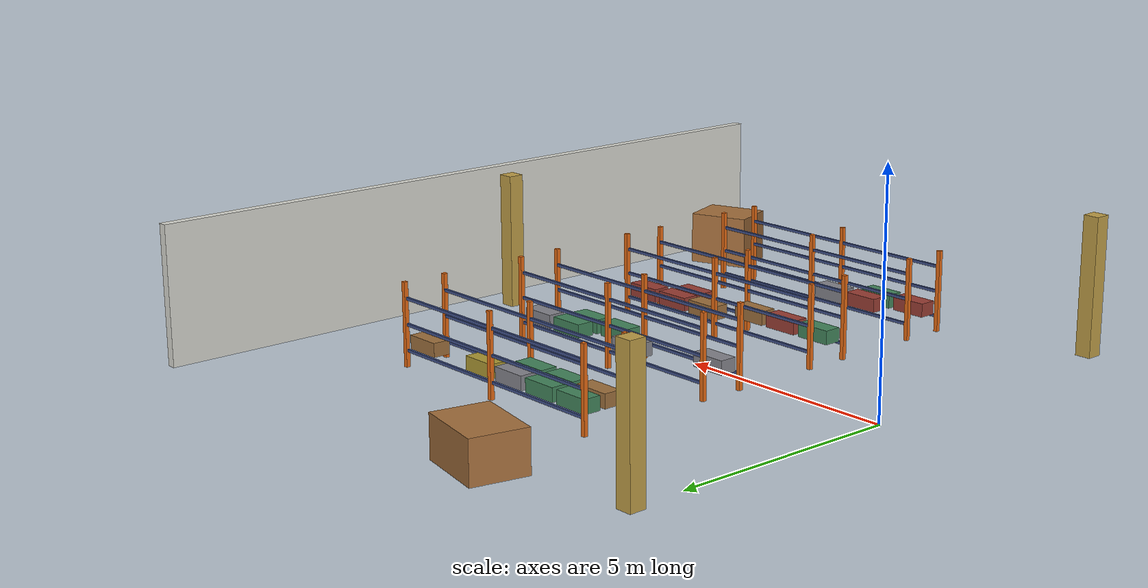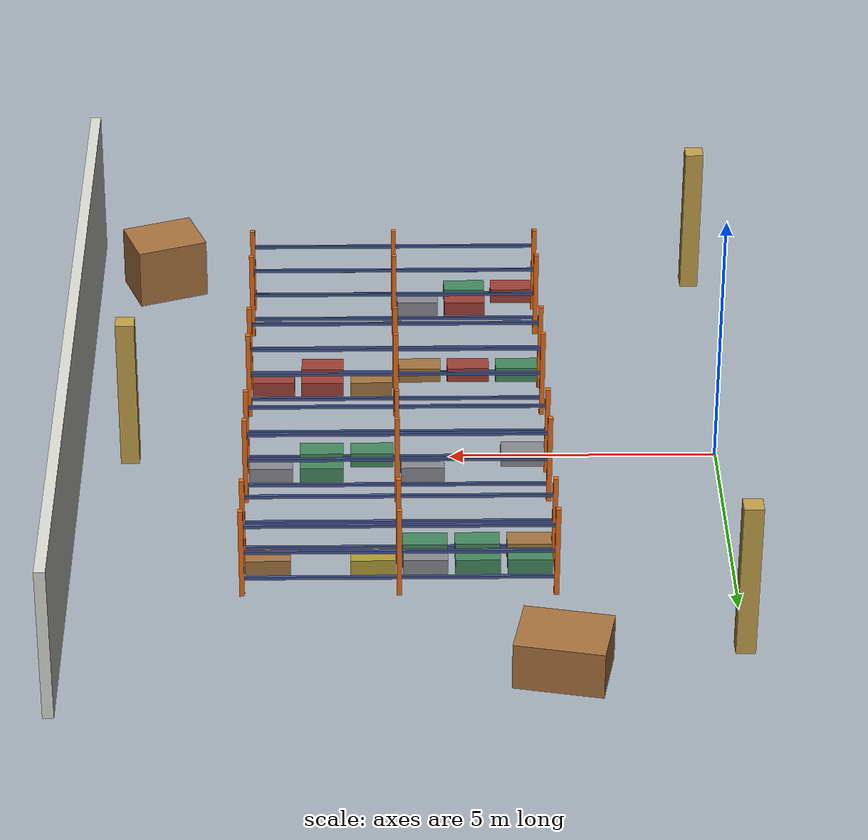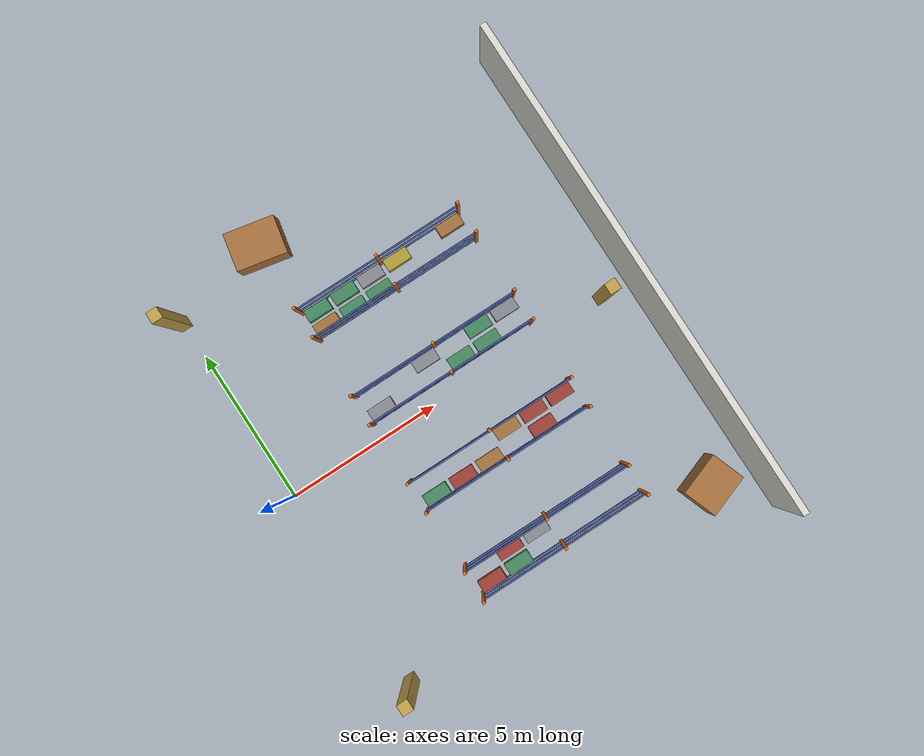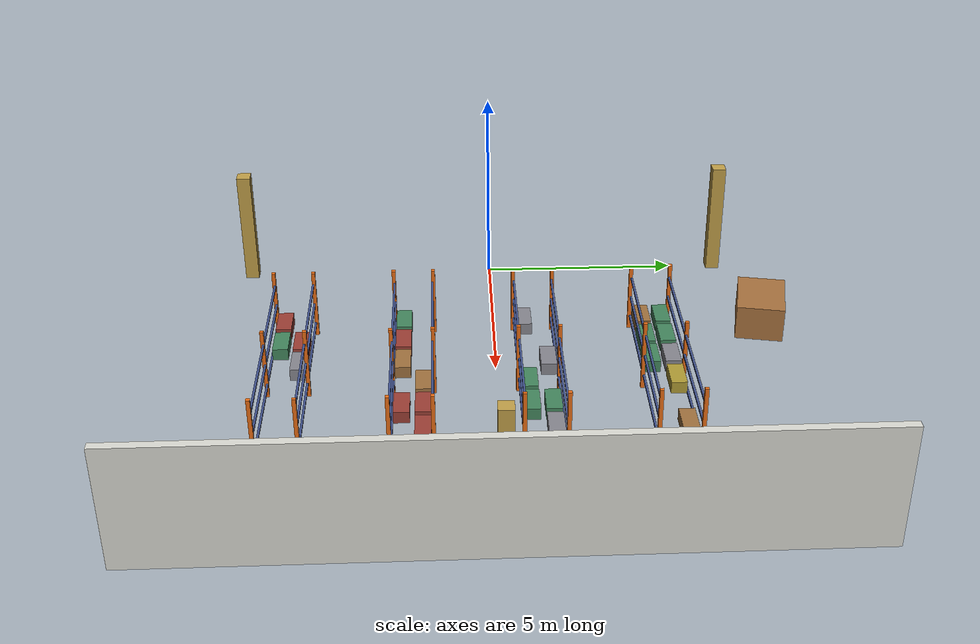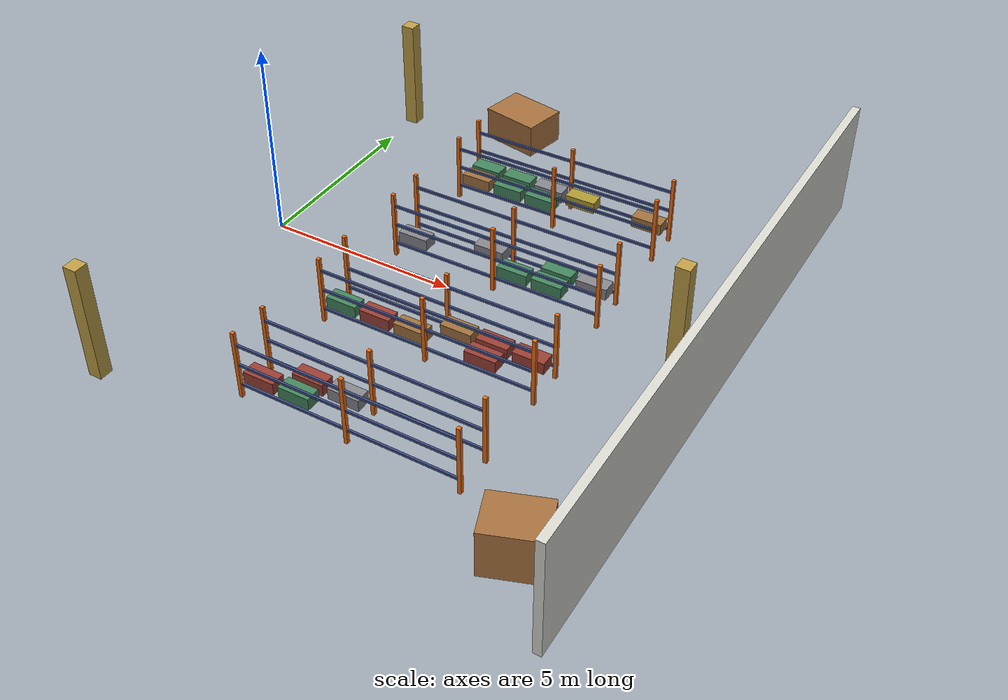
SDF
<sdf version="1.10">
 <world name="warehouse">
  <model name="warehouse_building">
   <static>true</static>
   <link name="wall_east">
    <pose>12 0 1.5 0 0 0</pose>
    <collision name="collision"><geometry><box><size>0.2 16.2 3</size></box></geometry></collision>
    <visual name="visual">
     <geometry><box><size>0.2 16.2 3</size></box></geometry>
     <material><ambient>0.7 0.7 0.68 1</ambient><diffuse>0.85 0.85 0.82 1</diffuse></material>
    </visual>
   </link>
   <link name="rack_r0_b1">
    <pose>6 -5 1.25 0 0 0</pose>
    <collision name="upright_n0_collision">
     <pose>-2.796 0.495 -0.350 0 0 0</pose>
     <geometry><box><size>0.09 0.09 1.8</size></box></geometry>
    </collision>
    <visual name="upright_n0_visual">
     <pose>-2.796 0.495 -0.350 0 0 0</pose>
     <geometry><box><size>0.09 0.09 1.8</size></box></geometry>
     <material><ambient>0.55 0.25 0.05 1</ambient><diffuse>0.90 0.42 0.08 1</diffuse></material>
    </visual>
    <collision name="upright_n1_collision">
     <pose>0 0.495 -0.350 0 0 0</pose>
     <geometry><box><size>0.09 0.09 1.8</size></box></geometry>
    </collision>
    <visual name="upright_n1_visual">
     <pose>0 0.495 -0.350 0 0 0</pose>
     <geometry><box><size>0.09 0.09 1.8</size></box></geometry>
     <material><ambient>0.55 0.25 0.05 1</ambient><diffuse>0.90 0.42 0.08 1</diffuse></material>
    </visual>
    <collision name="upright_n2_collision">
     <pose>2.796 0.495 -0.350 0 0 0</pose>
     <geometry><box><size>0.09 0.09 1.8</size></box></geometry>
    </collision>
    <visual name="upright_n2_visual">
     <pose>2.796 0.495 -0.350 0 0 0</pose>
     <geometry><box><size>0.09 0.09 1.8</size></box></geometry>
     <material><ambient>0.55 0.25 0.05 1</ambient><diffuse>0.90 0.42 0.08 1</diffuse></material>
    </visual>
    <collision name="beam_n0_l0_collision">
     <pose>-1.398 0.475 -0.900 0 0 0</pose>
     <geometry><box><size>2.706 0.05 0.06</size></box></geometry>
    </collision>
    <visual name="beam_n0_l0_visual">
     <pose>-1.398 0.475 -0.900 0 0 0</pose>
     <geometry><box><size>2.706 0.05 0.06</size></box></geometry>
     <material><ambient>0.15 0.18 0.30 1</ambient><diffuse>0.25 0.32 0.55 1</diffuse></material>
    </visual>
    <collision name="beam_n0_l1_collision">
     <pose>-1.398 0.475 -0.350 0 0 0</pose>
     <geometry><box><size>2.706 0.05 0.06</size></box></geometry>
    </collision>
    <visual name="beam_n0_l1_visual">
     <pose>-1.398 0.475 -0.350 0 0 0</pose>
     <geometry><box><size>2.706 0.05 0.06</size></box></geometry>
     <material><ambient>0.15 0.18 0.30 1</ambient><diffuse>0.25 0.32 0.55 1</diffuse></material>
    </visual>
    <collision name="beam_n0_l2_collision">
     <pose>-1.398 0.475 0.200 0 0 0</pose>
     <geometry><box><size>2.706 0.05 0.06</size></box></geometry>
    </collision>
    <visual name="beam_n0_l2_visual">
     <pose>-1.398 0.475 0.200 0 0 0</pose>
     <geometry><box><size>2.706 0.05 0.06</size></box></geometry>
     <material><ambient>0.15 0.18 0.30 1</ambient><diffuse>0.25 0.32 0.55 1</diffuse></material>
    </visual>
    <collision name="beam_n1_l0_collision">
     <pose>1.398 0.475 -0.900 0 0 0</pose>
     <geometry><box><size>2.706 0.05 0.06</size></box></geometry>
    </collision>
    <visual name="beam_n1_l0_visual">
     <pose>1.398 0.475 -0.900 0 0 0</pose>
     <geometry><box><size>2.706 0.05 0.06</size></box></geometry>
     <material><ambient>0.15 0.18 0.30 1</ambient><diffuse>0.25 0.32 0.55 1</diffuse></material>
    </visual>
    <collision name="beam_n1_l1_collision">
     <pose>1.398 0.475 -0.350 0 0 0</pose>
     <geometry><box><size>2.706 0.05 0.06</size></box></geometry>
    </collision>
    <visual name="beam_n1_l1_visual">
     <pose>1.398 0.475 -0.350 0 0 0</pose>
     <geometry><box><size>2.706 0.05 0.06</size></box></geometry>
     <material><ambient>0.15 0.18 0.30 1</ambient><diffuse>0.25 0.32 0.55 1</diffuse></material>
    </visual>
    <collision name="beam_n1_l2_collision">
     <pose>1.398 0.475 0.200 0 0 0</pose>
     <geometry><box><size>2.706 0.05 0.06</size></box></geometry>
    </collision>
    <visual name="beam_n1_l2_visual">
     <pose>1.398 0.475 0.200 0 0 0</pose>
     <geometry><box><size>2.706 0.05 0.06</size></box></geometry>
     <material><ambient>0.15 0.18 0.30 1</ambient><diffuse>0.25 0.32 0.55 1</diffuse></material>
    </visual>
    <collision name="item_n0_l0_s2_collision">
     <pose>-0.466 0.250 -0.720 0 0 0</pose>
     <geometry><box><size>0.8 0.38 0.3</size></box></geometry>
    </collision>
    <visual name="item_n0_l0_s2_visual">
     <pose>-0.466 0.250 -0.720 0 0 0</pose>
     <geometry><box><size>0.8 0.38 0.3</size></box></geometry>
     <material><ambient>0.30 0.30 0.32 1</ambient><diffuse>0.52 0.52 0.55 1</diffuse></material>
    </visual>
    <collision name="item_n0_l0_s1_collision">
     <pose>-1.398 0.250 -0.720 0 0 0</pose>
     <geometry><box><size>0.8 0.38 0.3</size></box></geometry>
    </collision>
    <visual name="item_n0_l0_s1_visual">
     <pose>-1.398 0.250 -0.720 0 0 0</pose>
     <geometry><box><size>0.8 0.38 0.3</size></box></geometry>
     <material><ambient>0.30 0.12 0.12 1</ambient><diffuse>0.60 0.24 0.20 1</diffuse></material>
    </visual>
    <collision name="upright_s0_collision">
     <pose>-2.796 -0.495 -0.350 0 0 0</pose>
     <geometry><box><size>0.09 0.09 1.8</size></box></geometry>
    </collision>
    <visual name="upright_s0_visual">
     <pose>-2.796 -0.495 -0.350 0 0 0</pose>
     <geometry><box><size>0.09 0.09 1.8</size></box></geometry>
     <material><ambient>0.55 0.25 0.05 1</ambient><diffuse>0.90 0.42 0.08 1</diffuse></material>
    </visual>
    <collision name="upright_s1_collision">
     <pose>0 -0.495 -0.350 0 0 0</pose>
     <geometry><box><size>0.09 0.09 1.8</size></box></geometry>
    </collision>
    <visual name="upright_s1_visual">
     <pose>0 -0.495 -0.350 0 0 0</pose>
     <geometry><box><size>0.09 0.09 1.8</size></box></geometry>
     <material><ambient>0.55 0.25 0.05 1</ambient><diffuse>0.90 0.42 0.08 1</diffuse></material>
    </visual>
    <collision name="upright_s2_collision">
     <pose>2.796 -0.495 -0.350 0 0 0</pose>
     <geometry><box><size>0.09 0.09 1.8</size></box></geometry>
    </collision>
    <visual name="upright_s2_visual">
     <pose>2.796 -0.495 -0.350 0 0 0</pose>
     <geometry><box><size>0.09 0.09 1.8</size></box></geometry>
     <material><ambient>0.55 0.25 0.05 1</ambient><diffuse>0.90 0.42 0.08 1</diffuse></material>
    </visual>
    <collision name="beam_s0_l0_collision">
     <pose>-1.398 -0.475 -0.900 0 0 0</pose>
     <geometry><box><size>2.706 0.05 0.06</size></box></geometry>
    </collision>
    <visual name="beam_s0_l0_visual">
     <pose>-1.398 -0.475 -0.900 0 0 0</pose>
     <geometry><box><size>2.706 0.05 0.06</size></box></geometry>
     <material><ambient>0.15 0.18 0.30 1</ambient><diffuse>0.25 0.32 0.55 1</diffuse></material>
    </visual>
    <collision name="beam_s0_l1_collision">
     <pose>-1.398 -0.475 -0.350 0 0 0</pose>
     <geometry><box><size>2.706 0.05 0.06</size></box></geometry>
    </collision>
    <visual name="beam_s0_l1_visual">
     <pose>-1.398 -0.475 -0.350 0 0 0</pose>
     <geometry><box><size>2.706 0.05 0.06</size></box></geometry>
     <material><ambient>0.15 0.18 0.30 1</ambient><diffuse>0.25 0.32 0.55 1</diffuse></material>
    </visual>
    <collision name="beam_s0_l2_collision">
     <pose>-1.398 -0.475 0.200 0 0 0</pose>
     <geometry><box><size>2.706 0.05 0.06</size></box></geometry>
    </collision>
    <visual name="beam_s0_l2_visual">
     <pose>-1.398 -0.475 0.200 0 0 0</pose>
     <geometry><box><size>2.706 0.05 0.06</size></box></geometry>
     <material><ambient>0.15 0.18 0.30 1</ambient><diffuse>0.25 0.32 0.55 1</diffuse></material>
    </visual>
    <collision name="beam_s1_l0_collision">
     <pose>1.398 -0.475 -0.900 0 0 0</pose>
     <geometry><box><size>2.706 0.05 0.06</size></box></geometry>
    </collision>
    <visual name="beam_s1_l0_visual">
     <pose>1.398 -0.475 -0.900 0 0 0</pose>
     <geometry><box><size>2.706 0.05 0.06</size></box></geometry>
     <material><ambient>0.15 0.18 0.30 1</ambient><diffuse>0.25 0.32 0.55 1</diffuse></material>
    </visual>
    <collision name="beam_s1_l1_collision">
     <pose>1.398 -0.475 -0.350 0 0 0</pose>
     <geometry><box><size>2.706 0.05 0.06</size></box></geometry>
    </collision>
    <visual name="beam_s1_l1_visual">
     <pose>1.398 -0.475 -0.350 0 0 0</pose>
     <geometry><box><size>2.706 0.05 0.06</size></box></geometry>
     <material><ambient>0.15 0.18 0.30 1</ambient><diffuse>0.25 0.32 0.55 1</diffuse></material>
    </visual>
    <collision name="beam_s1_l2_collision">
     <pose>1.398 -0.475 0.200 0 0 0</pose>
     <geometry><box><size>2.706 0.05 0.06</size></box></geometry>
    </collision>
    <visual name="beam_s1_l2_visual">
     <pose>1.398 -0.475 0.200 0 0 0</pose>
     <geometry><box><size>2.706 0.05 0.06</size></box></geometry>
     <material><ambient>0.15 0.18 0.30 1</ambient><diffuse>0.25 0.32 0.55 1</diffuse></material>
    </visual>
    <collision name="item_s0_l0_s0_collision">
     <pose>-2.33 -0.250 -0.720 0 0 0</pose>
     <geometry><box><size>0.8 0.38 0.3</size></box></geometry>
    </collision>
    <visual name="item_s0_l0_s0_visual">
     <pose>-2.33 -0.250 -0.720 0 0 0</pose>
     <geometry><box><size>0.8 0.38 0.3</size></box></geometry>
     <material><ambient>0.30 0.12 0.12 1</ambient><diffuse>0.60 0.24 0.20 1</diffuse></material>
    </visual>
    <collision name="item_s0_l0_s1_collision">
     <pose>-1.398 -0.250 -0.720 0 0 0</pose>
     <geometry><box><size>0.8 0.38 0.3</size></box></geometry>
    </collision>
    <visual name="item_s0_l0_s1_visual">
     <pose>-1.398 -0.250 -0.720 0 0 0</pose>
     <geometry><box><size>0.8 0.38 0.3</size></box></geometry>
     <material><ambient>0.14 0.28 0.20 1</ambient><diffuse>0.26 0.52 0.36 1</diffuse></material>
    </visual>
   </link>
   <link name="rack_r1_b1">
    <pose>6 -2 1.25 0 0 0</pose>
    <collision name="upright_n0_collision">
     <pose>-2.796 0.495 -0.350 0 0 0</pose>
     <geometry><box><size>0.09 0.09 1.8</size></box></geometry>
    </collision>
    <visual name="upright_n0_visual">
     <pose>-2.796 0.495 -0.350 0 0 0</pose>
     <geometry><box><size>0.09 0.09 1.8</size></box></geometry>
     <material><ambient>0.55 0.25 0.05 1</ambient><diffuse>0.90 0.42 0.08 1</diffuse></material>
    </visual>
    <collision name="upright_n1_collision">
     <pose>0 0.495 -0.350 0 0 0</pose>
     <geometry><box><size>0.09 0.09 1.8</size></box></geometry>
    </collision>
    <visual name="upright_n1_visual">
     <pose>0 0.495 -0.350 0 0 0</pose>
     <geometry><box><size>0.09 0.09 1.8</size></box></geometry>
     <material><ambient>0.55 0.25 0.05 1</ambient><diffuse>0.90 0.42 0.08 1</diffuse></material>
    </visual>
    <collision name="upright_n2_collision">
     <pose>2.796 0.495 -0.350 0 0 0</pose>
     <geometry><box><size>0.09 0.09 1.8</size></box></geometry>
    </collision>
    <visual name="upright_n2_visual">
     <pose>2.796 0.495 -0.350 0 0 0</pose>
     <geometry><box><size>0.09 0.09 1.8</size></box></geometry>
     <material><ambient>0.55 0.25 0.05 1</ambient><diffuse>0.90 0.42 0.08 1</diffuse></material>
    </visual>
    <collision name="beam_n0_l0_collision">
     <pose>-1.398 0.475 -0.900 0 0 0</pose>
     <geometry><box><size>2.706 0.05 0.06</size></box></geometry>
    </collision>
    <visual name="beam_n0_l0_visual">
     <pose>-1.398 0.475 -0.900 0 0 0</pose>
     <geometry><box><size>2.706 0.05 0.06</size></box></geometry>
     <material><ambient>0.15 0.18 0.30 1</ambient><diffuse>0.25 0.32 0.55 1</diffuse></material>
    </visual>
    <collision name="beam_n0_l1_collision">
     <pose>-1.398 0.475 -0.350 0 0 0</pose>
     <geometry><box><size>2.706 0.05 0.06</size></box></geometry>
    </collision>
    <visual name="beam_n0_l1_visual">
     <pose>-1.398 0.475 -0.350 0 0 0</pose>
     <geometry><box><size>2.706 0.05 0.06</size></box></geometry>
     <material><ambient>0.15 0.18 0.30 1</ambient><diffuse>0.25 0.32 0.55 1</diffuse></material>
    </visual>
    <collision name="beam_n0_l2_collision">
     <pose>-1.398 0.475 0.200 0 0 0</pose>
     <geometry><box><size>2.706 0.05 0.06</size></box></geometry>
    </collision>
    <visual name="beam_n0_l2_visual">
     <pose>-1.398 0.475 0.200 0 0 0</pose>
     <geometry><box><size>2.706 0.05 0.06</size></box></geometry>
     <material><ambient>0.15 0.18 0.30 1</ambient><diffuse>0.25 0.32 0.55 1</diffuse></material>
    </visual>
    <collision name="beam_n1_l0_collision">
     <pose>1.398 0.475 -0.900 0 0 0</pose>
     <geometry><box><size>2.706 0.05 0.06</size></box></geometry>
    </collision>
    <visual name="beam_n1_l0_visual">
     <pose>1.398 0.475 -0.900 0 0 0</pose>
     <geometry><box><size>2.706 0.05 0.06</size></box></geometry>
     <material><ambient>0.15 0.18 0.30 1</ambient><diffuse>0.25 0.32 0.55 1</diffuse></material>
    </visual>
    <collision name="beam_n1_l1_collision">
     <pose>1.398 0.475 -0.350 0 0 0</pose>
     <geometry><box><size>2.706 0.05 0.06</size></box></geometry>
    </collision>
    <visual name="beam_n1_l1_visual">
     <pose>1.398 0.475 -0.350 0 0 0</pose>
     <geometry><box><size>2.706 0.05 0.06</size></box></geometry>
     <material><ambient>0.15 0.18 0.30 1</ambient><diffuse>0.25 0.32 0.55 1</diffuse></material>
    </visual>
    <collision name="beam_n1_l2_collision">
     <pose>1.398 0.475 0.200 0 0 0</pose>
     <geometry><box><size>2.706 0.05 0.06</size></box></geometry>
    </collision>
    <visual name="beam_n1_l2_visual">
     <pose>1.398 0.475 0.200 0 0 0</pose>
     <geometry><box><size>2.706 0.05 0.06</size></box></geometry>
     <material><ambient>0.15 0.18 0.30 1</ambient><diffuse>0.25 0.32 0.55 1</diffuse></material>
    </visual>
    <collision name="item_n1_l0_s0_collision">
     <pose>0.466 0.250 -0.720 0 0 0</pose>
     <geometry><box><size>0.8 0.38 0.3</size></box></geometry>
    </collision>
    <visual name="item_n1_l0_s0_visual">
     <pose>0.466 0.250 -0.720 0 0 0</pose>
     <geometry><box><size>0.8 0.38 0.3</size></box></geometry>
     <material><ambient>0.38 0.26 0.13 1</ambient><diffuse>0.62 0.44 0.24 1</diffuse></material>
    </visual>
    <collision name="item_n1_l0_s2_collision">
     <pose>2.33 0.250 -0.720 0 0 0</pose>
     <geometry><box><size>0.8 0.38 0.3</size></box></geometry>
    </collision>
    <visual name="item_n1_l0_s2_visual">
     <pose>2.33 0.250 -0.720 0 0 0</pose>
     <geometry><box><size>0.8 0.38 0.3</size></box></geometry>
     <material><ambient>0.30 0.12 0.12 1</ambient><diffuse>0.60 0.24 0.20 1</diffuse></material>
    </visual>
    <collision name="item_n1_l0_s1_collision">
     <pose>1.398 0.250 -0.720 0 0 0</pose>
     <geometry><box><size>0.8 0.38 0.3</size></box></geometry>
    </collision>
    <visual name="item_n1_l0_s1_visual">
     <pose>1.398 0.250 -0.720 0 0 0</pose>
     <geometry><box><size>0.8 0.38 0.3</size></box></geometry>
     <material><ambient>0.30 0.12 0.12 1</ambient><diffuse>0.60 0.24 0.20 1</diffuse></material>
    </visual>
    <collision name="upright_s0_collision">
     <pose>-2.796 -0.495 -0.350 0 0 0</pose>
     <geometry><box><size>0.09 0.09 1.8</size></box></geometry>
    </collision>
    <visual name="upright_s0_visual">
     <pose>-2.796 -0.495 -0.350 0 0 0</pose>
     <geometry><box><size>0.09 0.09 1.8</size></box></geometry>
     <material><ambient>0.55 0.25 0.05 1</ambient><diffuse>0.90 0.42 0.08 1</diffuse></material>
    </visual>
    <collision name="upright_s1_collision">
     <pose>0 -0.495 -0.350 0 0 0</pose>
     <geometry><box><size>0.09 0.09 1.8</size></box></geometry>
    </collision>
    <visual name="upright_s1_visual">
     <pose>0 -0.495 -0.350 0 0 0</pose>
     <geometry><box><size>0.09 0.09 1.8</size></box></geometry>
     <material><ambient>0.55 0.25 0.05 1</ambient><diffuse>0.90 0.42 0.08 1</diffuse></material>
    </visual>
    <collision name="upright_s2_collision">
     <pose>2.796 -0.495 -0.350 0 0 0</pose>
     <geometry><box><size>0.09 0.09 1.8</size></box></geometry>
    </collision>
    <visual name="upright_s2_visual">
     <pose>2.796 -0.495 -0.350 0 0 0</pose>
     <geometry><box><size>0.09 0.09 1.8</size></box></geometry>
     <material><ambient>0.55 0.25 0.05 1</ambient><diffuse>0.90 0.42 0.08 1</diffuse></material>
    </visual>
    <collision name="beam_s0_l0_collision">
     <pose>-1.398 -0.475 -0.900 0 0 0</pose>
     <geometry><box><size>2.706 0.05 0.06</size></box></geometry>
    </collision>
    <visual name="beam_s0_l0_visual">
     <pose>-1.398 -0.475 -0.900 0 0 0</pose>
     <geometry><box><size>2.706 0.05 0.06</size></box></geometry>
     <material><ambient>0.15 0.18 0.30 1</ambient><diffuse>0.25 0.32 0.55 1</diffuse></material>
    </visual>
    <collision name="beam_s0_l1_collision">
     <pose>-1.398 -0.475 -0.350 0 0 0</pose>
     <geometry><box><size>2.706 0.05 0.06</size></box></geometry>
    </collision>
    <visual name="beam_s0_l1_visual">
     <pose>-1.398 -0.475 -0.350 0 0 0</pose>
     <geometry><box><size>2.706 0.05 0.06</size></box></geometry>
     <material><ambient>0.15 0.18 0.30 1</ambient><diffuse>0.25 0.32 0.55 1</diffuse></material>
    </visual>
    <collision name="beam_s0_l2_collision">
     <pose>-1.398 -0.475 0.200 0 0 0</pose>
     <geometry><box><size>2.706 0.05 0.06</size></box></geometry>
    </collision>
    <visual name="beam_s0_l2_visual">
     <pose>-1.398 -0.475 0.200 0 0 0</pose>
     <geometry><box><size>2.706 0.05 0.06</size></box></geometry>
     <material><ambient>0.15 0.18 0.30 1</ambient><diffuse>0.25 0.32 0.55 1</diffuse></material>
    </visual>
    <collision name="beam_s1_l0_collision">
     <pose>1.398 -0.475 -0.900 0 0 0</pose>
     <geometry><box><size>2.706 0.05 0.06</size></box></geometry>
    </collision>
    <visual name="beam_s1_l0_visual">
     <pose>1.398 -0.475 -0.900 0 0 0</pose>
     <geometry><box><size>2.706 0.05 0.06</size></box></geometry>
     <material><ambient>0.15 0.18 0.30 1</ambient><diffuse>0.25 0.32 0.55 1</diffuse></material>
    </visual>
    <collision name="beam_s1_l1_collision">
     <pose>1.398 -0.475 -0.350 0 0 0</pose>
     <geometry><box><size>2.706 0.05 0.06</size></box></geometry>
    </collision>
    <visual name="beam_s1_l1_visual">
     <pose>1.398 -0.475 -0.350 0 0 0</pose>
     <geometry><box><size>2.706 0.05 0.06</size></box></geometry>
     <material><ambient>0.15 0.18 0.30 1</ambient><diffuse>0.25 0.32 0.55 1</diffuse></material>
    </visual>
    <collision name="beam_s1_l2_collision">
     <pose>1.398 -0.475 0.200 0 0 0</pose>
     <geometry><box><size>2.706 0.05 0.06</size></box></geometry>
    </collision>
    <visual name="beam_s1_l2_visual">
     <pose>1.398 -0.475 0.200 0 0 0</pose>
     <geometry><box><size>2.706 0.05 0.06</size></box></geometry>
     <material><ambient>0.15 0.18 0.30 1</ambient><diffuse>0.25 0.32 0.55 1</diffuse></material>
    </visual>
    <collision name="item_s0_l0_s2_collision">
     <pose>-0.466 -0.250 -0.720 0 0 0</pose>
     <geometry><box><size>0.8 0.38 0.3</size></box></geometry>
    </collision>
    <visual name="item_s0_l0_s2_visual">
     <pose>-0.466 -0.250 -0.720 0 0 0</pose>
     <geometry><box><size>0.8 0.38 0.3</size></box></geometry>
     <material><ambient>0.38 0.26 0.13 1</ambient><diffuse>0.62 0.44 0.24 1</diffuse></material>
    </visual>
    <collision name="item_s0_l0_s0_collision">
     <pose>-2.33 -0.250 -0.720 0 0 0</pose>
     <geometry><box><size>0.8 0.38 0.3</size></box></geometry>
    </collision>
    <visual name="item_s0_l0_s0_visual">
     <pose>-2.33 -0.250 -0.720 0 0 0</pose>
     <geometry><box><size>0.8 0.38 0.3</size></box></geometry>
     <material><ambient>0.14 0.28 0.20 1</ambient><diffuse>0.26 0.52 0.36 1</diffuse></material>
    </visual>
    <collision name="item_s0_l0_s1_collision">
     <pose>-1.398 -0.250 -0.720 0 0 0</pose>
     <geometry><box><size>0.8 0.38 0.3</size></box></geometry>
    </collision>
    <visual name="item_s0_l0_s1_visual">
     <pose>-1.398 -0.250 -0.720 0 0 0</pose>
     <geometry><box><size>0.8 0.38 0.3</size></box></geometry>
     <material><ambient>0.30 0.12 0.12 1</ambient><diffuse>0.60 0.24 0.20 1</diffuse></material>
    </visual>
    <collision name="item_s1_l0_s1_collision">
     <pose>1.398 -0.250 -0.720 0 0 0</pose>
     <geometry><box><size>0.8 0.38 0.3</size></box></geometry>
    </collision>
    <visual name="item_s1_l0_s1_visual">
     <pose>1.398 -0.250 -0.720 0 0 0</pose>
     <geometry><box><size>0.8 0.38 0.3</size></box></geometry>
     <material><ambient>0.30 0.12 0.12 1</ambient><diffuse>0.60 0.24 0.20 1</diffuse></material>
    </visual>
   </link>
   <link name="rack_r2_b1">
    <pose>6 1 1.25 0 0 0</pose>
    <collision name="upright_n0_collision">
     <pose>-2.796 0.495 -0.350 0 0 0</pose>
     <geometry><box><size>0.09 0.09 1.8</size></box></geometry>
    </collision>
    <visual name="upright_n0_visual">
     <pose>-2.796 0.495 -0.350 0 0 0</pose>
     <geometry><box><size>0.09 0.09 1.8</size></box></geometry>
     <material><ambient>0.55 0.25 0.05 1</ambient><diffuse>0.90 0.42 0.08 1</diffuse></material>
    </visual>
    <collision name="upright_n1_collision">
     <pose>0 0.495 -0.350 0 0 0</pose>
     <geometry><box><size>0.09 0.09 1.8</size></box></geometry>
    </collision>
    <visual name="upright_n1_visual">
     <pose>0 0.495 -0.350 0 0 0</pose>
     <geometry><box><size>0.09 0.09 1.8</size></box></geometry>
     <material><ambient>0.55 0.25 0.05 1</ambient><diffuse>0.90 0.42 0.08 1</diffuse></material>
    </visual>
    <collision name="upright_n2_collision">
     <pose>2.796 0.495 -0.350 0 0 0</pose>
     <geometry><box><size>0.09 0.09 1.8</size></box></geometry>
    </collision>
    <visual name="upright_n2_visual">
     <pose>2.796 0.495 -0.350 0 0 0</pose>
     <geometry><box><size>0.09 0.09 1.8</size></box></geometry>
     <material><ambient>0.55 0.25 0.05 1</ambient><diffuse>0.90 0.42 0.08 1</diffuse></material>
    </visual>
    <collision name="beam_n0_l0_collision">
     <pose>-1.398 0.475 -0.900 0 0 0</pose>
     <geometry><box><size>2.706 0.05 0.06</size></box></geometry>
    </collision>
    <visual name="beam_n0_l0_visual">
     <pose>-1.398 0.475 -0.900 0 0 0</pose>
     <geometry><box><size>2.706 0.05 0.06</size></box></geometry>
     <material><ambient>0.15 0.18 0.30 1</ambient><diffuse>0.25 0.32 0.55 1</diffuse></material>
    </visual>
    <collision name="beam_n0_l1_collision">
     <pose>-1.398 0.475 -0.350 0 0 0</pose>
     <geometry><box><size>2.706 0.05 0.06</size></box></geometry>
    </collision>
    <visual name="beam_n0_l1_visual">
     <pose>-1.398 0.475 -0.350 0 0 0</pose>
     <geometry><box><size>2.706 0.05 0.06</size></box></geometry>
     <material><ambient>0.15 0.18 0.30 1</ambient><diffuse>0.25 0.32 0.55 1</diffuse></material>
    </visual>
    <collision name="beam_n0_l2_collision">
     <pose>-1.398 0.475 0.200 0 0 0</pose>
     <geometry><box><size>2.706 0.05 0.06</size></box></geometry>
    </collision>
    <visual name="beam_n0_l2_visual">
     <pose>-1.398 0.475 0.200 0 0 0</pose>
     <geometry><box><size>2.706 0.05 0.06</size></box></geometry>
     <material><ambient>0.15 0.18 0.30 1</ambient><diffuse>0.25 0.32 0.55 1</diffuse></material>
    </visual>
    <collision name="beam_n1_l0_collision">
     <pose>1.398 0.475 -0.900 0 0 0</pose>
     <geometry><box><size>2.706 0.05 0.06</size></box></geometry>
    </collision>
    <visual name="beam_n1_l0_visual">
     <pose>1.398 0.475 -0.900 0 0 0</pose>
     <geometry><box><size>2.706 0.05 0.06</size></box></geometry>
     <material><ambient>0.15 0.18 0.30 1</ambient><diffuse>0.25 0.32 0.55 1</diffuse></material>
    </visual>
    <collision name="beam_n1_l1_collision">
     <pose>1.398 0.475 -0.350 0 0 0</pose>
     <geometry><box><size>2.706 0.05 0.06</size></box></geometry>
    </collision>
    <visual name="beam_n1_l1_visual">
     <pose>1.398 0.475 -0.350 0 0 0</pose>
     <geometry><box><size>2.706 0.05 0.06</size></box></geometry>
     <material><ambient>0.15 0.18 0.30 1</ambient><diffuse>0.25 0.32 0.55 1</diffuse></material>
    </visual>
    <collision name="beam_n1_l2_collision">
     <pose>1.398 0.475 0.200 0 0 0</pose>
     <geometry><box><size>2.706 0.05 0.06</size></box></geometry>
    </collision>
    <visual name="beam_n1_l2_visual">
     <pose>1.398 0.475 0.200 0 0 0</pose>
     <geometry><box><size>2.706 0.05 0.06</size></box></geometry>
     <material><ambient>0.15 0.18 0.30 1</ambient><diffuse>0.25 0.32 0.55 1</diffuse></material>
    </visual>
    <collision name="item_n0_l0_s2_collision">
     <pose>-0.466 0.250 -0.720 0 0 0</pose>
     <geometry><box><size>0.8 0.38 0.3</size></box></geometry>
    </collision>
    <visual name="item_n0_l0_s2_visual">
     <pose>-0.466 0.250 -0.720 0 0 0</pose>
     <geometry><box><size>0.8 0.38 0.3</size></box></geometry>
     <material><ambient>0.30 0.30 0.32 1</ambient><diffuse>0.52 0.52 0.55 1</diffuse></material>
    </visual>
    <collision name="item_n1_l0_s1_collision">
     <pose>1.398 0.250 -0.720 0 0 0</pose>
     <geometry><box><size>0.8 0.38 0.3</size></box></geometry>
    </collision>
    <visual name="item_n1_l0_s1_visual">
     <pose>1.398 0.250 -0.720 0 0 0</pose>
     <geometry><box><size>0.8 0.38 0.3</size></box></geometry>
     <material><ambient>0.14 0.28 0.20 1</ambient><diffuse>0.26 0.52 0.36 1</diffuse></material>
    </visual>
    <collision name="item_n1_l0_s2_collision">
     <pose>2.33 0.250 -0.720 0 0 0</pose>
     <geometry><box><size>0.8 0.38 0.3</size></box></geometry>
    </collision>
    <visual name="item_n1_l0_s2_visual">
     <pose>2.33 0.250 -0.720 0 0 0</pose>
     <geometry><box><size>0.8 0.38 0.3</size></box></geometry>
     <material><ambient>0.30 0.30 0.32 1</ambient><diffuse>0.52 0.52 0.55 1</diffuse></material>
    </visual>
    <collision name="upright_s0_collision">
     <pose>-2.796 -0.495 -0.350 0 0 0</pose>
     <geometry><box><size>0.09 0.09 1.8</size></box></geometry>
    </collision>
    <visual name="upright_s0_visual">
     <pose>-2.796 -0.495 -0.350 0 0 0</pose>
     <geometry><box><size>0.09 0.09 1.8</size></box></geometry>
     <material><ambient>0.55 0.25 0.05 1</ambient><diffuse>0.90 0.42 0.08 1</diffuse></material>
    </visual>
    <collision name="upright_s1_collision">
     <pose>0 -0.495 -0.350 0 0 0</pose>
     <geometry><box><size>0.09 0.09 1.8</size></box></geometry>
    </collision>
    <visual name="upright_s1_visual">
     <pose>0 -0.495 -0.350 0 0 0</pose>
     <geometry><box><size>0.09 0.09 1.8</size></box></geometry>
     <material><ambient>0.55 0.25 0.05 1</ambient><diffuse>0.90 0.42 0.08 1</diffuse></material>
    </visual>
    <collision name="upright_s2_collision">
     <pose>2.796 -0.495 -0.350 0 0 0</pose>
     <geometry><box><size>0.09 0.09 1.8</size></box></geometry>
    </collision>
    <visual name="upright_s2_visual">
     <pose>2.796 -0.495 -0.350 0 0 0</pose>
     <geometry><box><size>0.09 0.09 1.8</size></box></geometry>
     <material><ambient>0.55 0.25 0.05 1</ambient><diffuse>0.90 0.42 0.08 1</diffuse></material>
    </visual>
    <collision name="beam_s0_l0_collision">
     <pose>-1.398 -0.475 -0.900 0 0 0</pose>
     <geometry><box><size>2.706 0.05 0.06</size></box></geometry>
    </collision>
    <visual name="beam_s0_l0_visual">
     <pose>-1.398 -0.475 -0.900 0 0 0</pose>
     <geometry><box><size>2.706 0.05 0.06</size></box></geometry>
     <material><ambient>0.15 0.18 0.30 1</ambient><diffuse>0.25 0.32 0.55 1</diffuse></material>
    </visual>
    <collision name="beam_s0_l1_collision">
     <pose>-1.398 -0.475 -0.350 0 0 0</pose>
     <geometry><box><size>2.706 0.05 0.06</size></box></geometry>
    </collision>
    <visual name="beam_s0_l1_visual">
     <pose>-1.398 -0.475 -0.350 0 0 0</pose>
     <geometry><box><size>2.706 0.05 0.06</size></box></geometry>
     <material><ambient>0.15 0.18 0.30 1</ambient><diffuse>0.25 0.32 0.55 1</diffuse></material>
    </visual>
    <collision name="beam_s0_l2_collision">
     <pose>-1.398 -0.475 0.200 0 0 0</pose>
     <geometry><box><size>2.706 0.05 0.06</size></box></geometry>
    </collision>
    <visual name="beam_s0_l2_visual">
     <pose>-1.398 -0.475 0.200 0 0 0</pose>
     <geometry><box><size>2.706 0.05 0.06</size></box></geometry>
     <material><ambient>0.15 0.18 0.30 1</ambient><diffuse>0.25 0.32 0.55 1</diffuse></material>
    </visual>
    <collision name="beam_s1_l0_collision">
     <pose>1.398 -0.475 -0.900 0 0 0</pose>
     <geometry><box><size>2.706 0.05 0.06</size></box></geometry>
    </collision>
    <visual name="beam_s1_l0_visual">
     <pose>1.398 -0.475 -0.900 0 0 0</pose>
     <geometry><box><size>2.706 0.05 0.06</size></box></geometry>
     <material><ambient>0.15 0.18 0.30 1</ambient><diffuse>0.25 0.32 0.55 1</diffuse></material>
    </visual>
    <collision name="beam_s1_l1_collision">
     <pose>1.398 -0.475 -0.350 0 0 0</pose>
     <geometry><box><size>2.706 0.05 0.06</size></box></geometry>
    </collision>
    <visual name="beam_s1_l1_visual">
     <pose>1.398 -0.475 -0.350 0 0 0</pose>
     <geometry><box><size>2.706 0.05 0.06</size></box></geometry>
     <material><ambient>0.15 0.18 0.30 1</ambient><diffuse>0.25 0.32 0.55 1</diffuse></material>
    </visual>
    <collision name="beam_s1_l2_collision">
     <pose>1.398 -0.475 0.200 0 0 0</pose>
     <geometry><box><size>2.706 0.05 0.06</size></box></geometry>
    </collision>
    <visual name="beam_s1_l2_visual">
     <pose>1.398 -0.475 0.200 0 0 0</pose>
     <geometry><box><size>2.706 0.05 0.06</size></box></geometry>
     <material><ambient>0.15 0.18 0.30 1</ambient><diffuse>0.25 0.32 0.55 1</diffuse></material>
    </visual>
    <collision name="item_s0_l0_s0_collision">
     <pose>-2.33 -0.250 -0.720 0 0 0</pose>
     <geometry><box><size>0.8 0.38 0.3</size></box></geometry>
    </collision>
    <visual name="item_s0_l0_s0_visual">
     <pose>-2.33 -0.250 -0.720 0 0 0</pose>
     <geometry><box><size>0.8 0.38 0.3</size></box></geometry>
     <material><ambient>0.30 0.30 0.32 1</ambient><diffuse>0.52 0.52 0.55 1</diffuse></material>
    </visual>
    <collision name="item_s1_l0_s1_collision">
     <pose>1.398 -0.250 -0.720 0 0 0</pose>
     <geometry><box><size>0.8 0.38 0.3</size></box></geometry>
    </collision>
    <visual name="item_s1_l0_s1_visual">
     <pose>1.398 -0.250 -0.720 0 0 0</pose>
     <geometry><box><size>0.8 0.38 0.3</size></box></geometry>
     <material><ambient>0.14 0.28 0.20 1</ambient><diffuse>0.26 0.52 0.36 1</diffuse></material>
    </visual>
    <collision name="item_s1_l0_s0_collision">
     <pose>0.466 -0.250 -0.720 0 0 0</pose>
     <geometry><box><size>0.8 0.38 0.3</size></box></geometry>
    </collision>
    <visual name="item_s1_l0_s0_visual">
     <pose>0.466 -0.250 -0.720 0 0 0</pose>
     <geometry><box><size>0.8 0.38 0.3</size></box></geometry>
     <material><ambient>0.14 0.28 0.20 1</ambient><diffuse>0.26 0.52 0.36 1</diffuse></material>
    </visual>
   </link>
   <link name="rack_r3_b1">
    <pose>6 4 1.25 0 0 0</pose>
    <collision name="upright_n0_collision">
     <pose>-2.796 0.495 -0.350 0 0 0</pose>
     <geometry><box><size>0.09 0.09 1.8</size></box></geometry>
    </collision>
    <visual name="upright_n0_visual">
     <pose>-2.796 0.495 -0.350 0 0 0</pose>
     <geometry><box><size>0.09 0.09 1.8</size></box></geometry>
     <material><ambient>0.55 0.25 0.05 1</ambient><diffuse>0.90 0.42 0.08 1</diffuse></material>
    </visual>
    <collision name="upright_n1_collision">
     <pose>0 0.495 -0.350 0 0 0</pose>
     <geometry><box><size>0.09 0.09 1.8</size></box></geometry>
    </collision>
    <visual name="upright_n1_visual">
     <pose>0 0.495 -0.350 0 0 0</pose>
     <geometry><box><size>0.09 0.09 1.8</size></box></geometry>
     <material><ambient>0.55 0.25 0.05 1</ambient><diffuse>0.90 0.42 0.08 1</diffuse></material>
    </visual>
    <collision name="upright_n2_collision">
     <pose>2.796 0.495 -0.350 0 0 0</pose>
     <geometry><box><size>0.09 0.09 1.8</size></box></geometry>
    </collision>
    <visual name="upright_n2_visual">
     <pose>2.796 0.495 -0.350 0 0 0</pose>
     <geometry><box><size>0.09 0.09 1.8</size></box></geometry>
     <material><ambient>0.55 0.25 0.05 1</ambient><diffuse>0.90 0.42 0.08 1</diffuse></material>
    </visual>
    <collision name="beam_n0_l0_collision">
     <pose>-1.398 0.475 -0.900 0 0 0</pose>
     <geometry><box><size>2.706 0.05 0.06</size></box></geometry>
    </collision>
    <visual name="beam_n0_l0_visual">
     <pose>-1.398 0.475 -0.900 0 0 0</pose>
     <geometry><box><size>2.706 0.05 0.06</size></box></geometry>
     <material><ambient>0.15 0.18 0.30 1</ambient><diffuse>0.25 0.32 0.55 1</diffuse></material>
    </visual>
    <collision name="beam_n0_l1_collision">
     <pose>-1.398 0.475 -0.350 0 0 0</pose>
     <geometry><box><size>2.706 0.05 0.06</size></box></geometry>
    </collision>
    <visual name="beam_n0_l1_visual">
     <pose>-1.398 0.475 -0.350 0 0 0</pose>
     <geometry><box><size>2.706 0.05 0.06</size></box></geometry>
     <material><ambient>0.15 0.18 0.30 1</ambient><diffuse>0.25 0.32 0.55 1</diffuse></material>
    </visual>
    <collision name="beam_n0_l2_collision">
     <pose>-1.398 0.475 0.200 0 0 0</pose>
     <geometry><box><size>2.706 0.05 0.06</size></box></geometry>
    </collision>
    <visual name="beam_n0_l2_visual">
     <pose>-1.398 0.475 0.200 0 0 0</pose>
     <geometry><box><size>2.706 0.05 0.06</size></box></geometry>
     <material><ambient>0.15 0.18 0.30 1</ambient><diffuse>0.25 0.32 0.55 1</diffuse></material>
    </visual>
    <collision name="beam_n1_l0_collision">
     <pose>1.398 0.475 -0.900 0 0 0</pose>
     <geometry><box><size>2.706 0.05 0.06</size></box></geometry>
    </collision>
    <visual name="beam_n1_l0_visual">
     <pose>1.398 0.475 -0.900 0 0 0</pose>
     <geometry><box><size>2.706 0.05 0.06</size></box></geometry>
     <material><ambient>0.15 0.18 0.30 1</ambient><diffuse>0.25 0.32 0.55 1</diffuse></material>
    </visual>
    <collision name="beam_n1_l1_collision">
     <pose>1.398 0.475 -0.350 0 0 0</pose>
     <geometry><box><size>2.706 0.05 0.06</size></box></geometry>
    </collision>
    <visual name="beam_n1_l1_visual">
     <pose>1.398 0.475 -0.350 0 0 0</pose>
     <geometry><box><size>2.706 0.05 0.06</size></box></geometry>
     <material><ambient>0.15 0.18 0.30 1</ambient><diffuse>0.25 0.32 0.55 1</diffuse></material>
    </visual>
    <collision name="beam_n1_l2_collision">
     <pose>1.398 0.475 0.200 0 0 0</pose>
     <geometry><box><size>2.706 0.05 0.06</size></box></geometry>
    </collision>
    <visual name="beam_n1_l2_visual">
     <pose>1.398 0.475 0.200 0 0 0</pose>
     <geometry><box><size>2.706 0.05 0.06</size></box></geometry>
     <material><ambient>0.15 0.18 0.30 1</ambient><diffuse>0.25 0.32 0.55 1</diffuse></material>
    </visual>
    <collision name="item_n0_l0_s1_collision">
     <pose>-1.398 0.250 -0.720 0 0 0</pose>
     <geometry><box><size>0.8 0.38 0.3</size></box></geometry>
    </collision>
    <visual name="item_n0_l0_s1_visual">
     <pose>-1.398 0.250 -0.720 0 0 0</pose>
     <geometry><box><size>0.8 0.38 0.3</size></box></geometry>
     <material><ambient>0.14 0.28 0.20 1</ambient><diffuse>0.26 0.52 0.36 1</diffuse></material>
    </visual>
    <collision name="item_n0_l0_s0_collision">
     <pose>-2.33 0.250 -0.720 0 0 0</pose>
     <geometry><box><size>0.8 0.38 0.3</size></box></geometry>
    </collision>
    <visual name="item_n0_l0_s0_visual">
     <pose>-2.33 0.250 -0.720 0 0 0</pose>
     <geometry><box><size>0.8 0.38 0.3</size></box></geometry>
     <material><ambient>0.14 0.28 0.20 1</ambient><diffuse>0.26 0.52 0.36 1</diffuse></material>
    </visual>
    <collision name="item_n0_l0_s2_collision">
     <pose>-0.466 0.250 -0.720 0 0 0</pose>
     <geometry><box><size>0.8 0.38 0.3</size></box></geometry>
    </collision>
    <visual name="item_n0_l0_s2_visual">
     <pose>-0.466 0.250 -0.720 0 0 0</pose>
     <geometry><box><size>0.8 0.38 0.3</size></box></geometry>
     <material><ambient>0.30 0.30 0.32 1</ambient><diffuse>0.52 0.52 0.55 1</diffuse></material>
    </visual>
    <collision name="item_n1_l0_s0_collision">
     <pose>0.466 0.250 -0.720 0 0 0</pose>
     <geometry><box><size>0.8 0.38 0.3</size></box></geometry>
    </collision>
    <visual name="item_n1_l0_s0_visual">
     <pose>0.466 0.250 -0.720 0 0 0</pose>
     <geometry><box><size>0.8 0.38 0.3</size></box></geometry>
     <material><ambient>0.34 0.30 0.10 1</ambient><diffuse>0.68 0.60 0.20 1</diffuse></material>
    </visual>
    <collision name="item_n1_l0_s2_collision">
     <pose>2.33 0.250 -0.720 0 0 0</pose>
     <geometry><box><size>0.8 0.38 0.3</size></box></geometry>
    </collision>
    <visual name="item_n1_l0_s2_visual">
     <pose>2.33 0.250 -0.720 0 0 0</pose>
     <geometry><box><size>0.8 0.38 0.3</size></box></geometry>
     <material><ambient>0.38 0.26 0.13 1</ambient><diffuse>0.62 0.44 0.24 1</diffuse></material>
    </visual>
    <collision name="upright_s0_collision">
     <pose>-2.796 -0.495 -0.350 0 0 0</pose>
     <geometry><box><size>0.09 0.09 1.8</size></box></geometry>
    </collision>
    <visual name="upright_s0_visual">
     <pose>-2.796 -0.495 -0.350 0 0 0</pose>
     <geometry><box><size>0.09 0.09 1.8</size></box></geometry>
     <material><ambient>0.55 0.25 0.05 1</ambient><diffuse>0.90 0.42 0.08 1</diffuse></material>
    </visual>
    <collision name="upright_s1_collision">
     <pose>0 -0.495 -0.350 0 0 0</pose>
     <geometry><box><size>0.09 0.09 1.8</size></box></geometry>
    </collision>
    <visual name="upright_s1_visual">
     <pose>0 -0.495 -0.350 0 0 0</pose>
     <geometry><box><size>0.09 0.09 1.8</size></box></geometry>
     <material><ambient>0.55 0.25 0.05 1</ambient><diffuse>0.90 0.42 0.08 1</diffuse></material>
    </visual>
    <collision name="upright_s2_collision">
     <pose>2.796 -0.495 -0.350 0 0 0</pose>
     <geometry><box><size>0.09 0.09 1.8</size></box></geometry>
    </collision>
    <visual name="upright_s2_visual">
     <pose>2.796 -0.495 -0.350 0 0 0</pose>
     <geometry><box><size>0.09 0.09 1.8</size></box></geometry>
     <material><ambient>0.55 0.25 0.05 1</ambient><diffuse>0.90 0.42 0.08 1</diffuse></material>
    </visual>
    <collision name="beam_s0_l0_collision">
     <pose>-1.398 -0.475 -0.900 0 0 0</pose>
     <geometry><box><size>2.706 0.05 0.06</size></box></geometry>
    </collision>
    <visual name="beam_s0_l0_visual">
     <pose>-1.398 -0.475 -0.900 0 0 0</pose>
     <geometry><box><size>2.706 0.05 0.06</size></box></geometry>
     <material><ambient>0.15 0.18 0.30 1</ambient><diffuse>0.25 0.32 0.55 1</diffuse></material>
    </visual>
    <collision name="beam_s0_l1_collision">
     <pose>-1.398 -0.475 -0.350 0 0 0</pose>
     <geometry><box><size>2.706 0.05 0.06</size></box></geometry>
    </collision>
    <visual name="beam_s0_l1_visual">
     <pose>-1.398 -0.475 -0.350 0 0 0</pose>
     <geometry><box><size>2.706 0.05 0.06</size></box></geometry>
     <material><ambient>0.15 0.18 0.30 1</ambient><diffuse>0.25 0.32 0.55 1</diffuse></material>
    </visual>
    <collision name="beam_s0_l2_collision">
     <pose>-1.398 -0.475 0.200 0 0 0</pose>
     <geometry><box><size>2.706 0.05 0.06</size></box></geometry>
    </collision>
    <visual name="beam_s0_l2_visual">
     <pose>-1.398 -0.475 0.200 0 0 0</pose>
     <geometry><box><size>2.706 0.05 0.06</size></box></geometry>
     <material><ambient>0.15 0.18 0.30 1</ambient><diffuse>0.25 0.32 0.55 1</diffuse></material>
    </visual>
    <collision name="beam_s1_l0_collision">
     <pose>1.398 -0.475 -0.900 0 0 0</pose>
     <geometry><box><size>2.706 0.05 0.06</size></box></geometry>
    </collision>
    <visual name="beam_s1_l0_visual">
     <pose>1.398 -0.475 -0.900 0 0 0</pose>
     <geometry><box><size>2.706 0.05 0.06</size></box></geometry>
     <material><ambient>0.15 0.18 0.30 1</ambient><diffuse>0.25 0.32 0.55 1</diffuse></material>
    </visual>
    <collision name="beam_s1_l1_collision">
     <pose>1.398 -0.475 -0.350 0 0 0</pose>
     <geometry><box><size>2.706 0.05 0.06</size></box></geometry>
    </collision>
    <visual name="beam_s1_l1_visual">
     <pose>1.398 -0.475 -0.350 0 0 0</pose>
     <geometry><box><size>2.706 0.05 0.06</size></box></geometry>
     <material><ambient>0.15 0.18 0.30 1</ambient><diffuse>0.25 0.32 0.55 1</diffuse></material>
    </visual>
    <collision name="beam_s1_l2_collision">
     <pose>1.398 -0.475 0.200 0 0 0</pose>
     <geometry><box><size>2.706 0.05 0.06</size></box></geometry>
    </collision>
    <visual name="beam_s1_l2_visual">
     <pose>1.398 -0.475 0.200 0 0 0</pose>
     <geometry><box><size>2.706 0.05 0.06</size></box></geometry>
     <material><ambient>0.15 0.18 0.30 1</ambient><diffuse>0.25 0.32 0.55 1</diffuse></material>
    </visual>
    <collision name="item_s0_l0_s0_collision">
     <pose>-2.33 -0.250 -0.720 0 0 0</pose>
     <geometry><box><size>0.8 0.38 0.3</size></box></geometry>
    </collision>
    <visual name="item_s0_l0_s0_visual">
     <pose>-2.33 -0.250 -0.720 0 0 0</pose>
     <geometry><box><size>0.8 0.38 0.3</size></box></geometry>
     <material><ambient>0.38 0.26 0.13 1</ambient><diffuse>0.62 0.44 0.24 1</diffuse></material>
    </visual>
    <collision name="item_s0_l0_s2_collision">
     <pose>-0.466 -0.250 -0.720 0 0 0</pose>
     <geometry><box><size>0.8 0.38 0.3</size></box></geometry>
    </collision>
    <visual name="item_s0_l0_s2_visual">
     <pose>-0.466 -0.250 -0.720 0 0 0</pose>
     <geometry><box><size>0.8 0.38 0.3</size></box></geometry>
     <material><ambient>0.14 0.28 0.20 1</ambient><diffuse>0.26 0.52 0.36 1</diffuse></material>
    </visual>
    <collision name="item_s0_l0_s1_collision">
     <pose>-1.398 -0.250 -0.720 0 0 0</pose>
     <geometry><box><size>0.8 0.38 0.3</size></box></geometry>
    </collision>
    <visual name="item_s0_l0_s1_visual">
     <pose>-1.398 -0.250 -0.720 0 0 0</pose>
     <geometry><box><size>0.8 0.38 0.3</size></box></geometry>
     <material><ambient>0.14 0.28 0.20 1</ambient><diffuse>0.26 0.52 0.36 1</diffuse></material>
    </visual>
   </link>
   <link name="pillar_0">
    <pose>0 -6.5 1.5 0 0 0</pose>
    <collision name="collision"><geometry><box><size>0.35 0.35 3</size></box></geometry></collision>
    <visual name="visual">
     <geometry><box><size>0.35 0.35 3</size></box></geometry>
     <material><ambient>0.5 0.42 0.2 1</ambient><diffuse>0.75 0.62 0.28 1</diffuse></material>
    </visual>
   </link>
   <link name="pillar_1">
    <pose>0 6.2 1.5 0 0 0</pose>
    <collision name="collision"><geometry><box><size>0.35 0.35 3</size></box></geometry></collision>
    <visual name="visual">
     <geometry><box><size>0.35 0.35 3</size></box></geometry>
     <material><ambient>0.5 0.42 0.2 1</ambient><diffuse>0.75 0.62 0.28 1</diffuse></material>
    </visual>
   </link>
   <link name="pillar_3">
    <pose>11 0 1.5 0 0 0</pose>
    <collision name="collision"><geometry><box><size>0.35 0.35 3</size></box></geometry></collision>
    <visual name="visual">
     <geometry><box><size>0.35 0.35 3</size></box></geometry>
     <material><ambient>0.5 0.42 0.2 1</ambient><diffuse>0.75 0.62 0.28 1</diffuse></material>
    </visual>
   </link>
   <link name="crate_2">
    <pose>10.6 -6.4 0.6 0 0 0.35</pose>
    <collision name="collision"><geometry><box><size>1.4 1.1 1.2</size></box></geometry></collision>
    <visual name="visual">
     <geometry><box><size>1.4 1.1 1.2</size></box></geometry>
     <material><ambient>0.45 0.30 0.16 1</ambient><diffuse>0.65 0.44 0.24 1</diffuse></material>
    </visual>
   </link>
   <link name="crate_3">
    <pose>3.2 6.9 0.45 0 0 -0.2</pose>
    <collision name="collision"><geometry><box><size>1.6 1.2 0.9</size></box></geometry></collision>
    <visual name="visual">
     <geometry><box><size>1.6 1.2 0.9</size></box></geometry>
     <material><ambient>0.45 0.30 0.16 1</ambient><diffuse>0.65 0.44 0.24 1</diffuse></material>
    </visual>
   </link>
  </model>
 </world>
</sdf>
